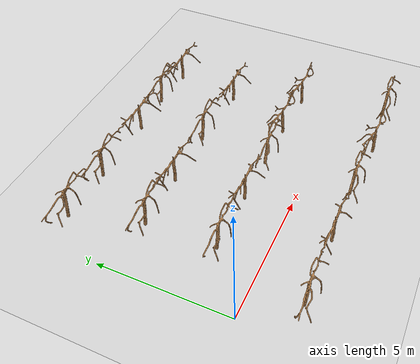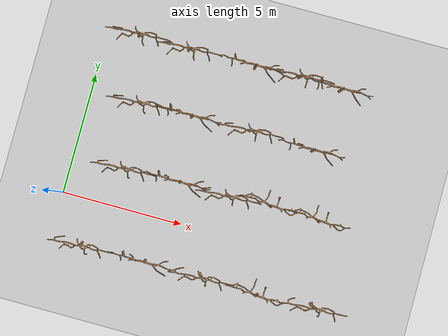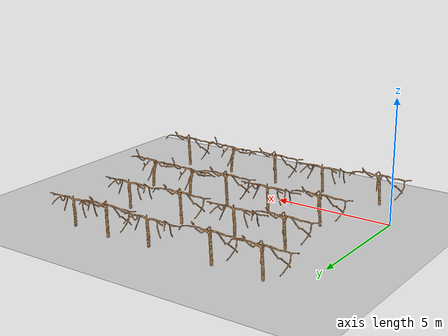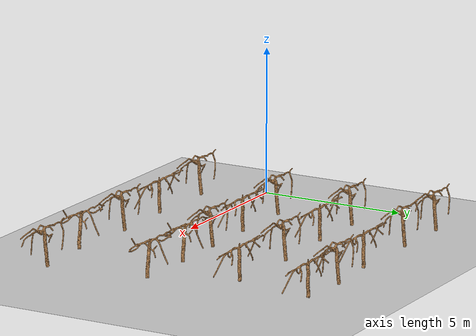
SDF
<sdf version="1.6">
 <world name="default">
  <light name="sun" type="directional">
   <pose>0 0 10 0 -0 0</pose>
   <diffuse>0.8 0.8 0.8 1</diffuse>
   <specular>0.1 0.1 0.1 1</specular>
   <attenuation>
    <range>1000</range>
    <constant>0.9</constant>
    <linear>0.01</linear>
    <quadratic>0.001</quadratic>
   </attenuation>
   <direction>-0.5 0.5 -1</direction>
  </light>
  <model name="ground_plane">
   <static>1</static>
   <link name="link">
    <collision name="collision">
     <geometry><plane><normal>0 0 1</normal><size>100 100</size></plane></geometry>
     <surface><friction><ode><mu>100</mu><mu2>50</mu2></ode></friction></surface>
    </collision>
    <visual name="visual">
     <cast_shadows>0</cast_shadows>
     <geometry><plane><normal>0 0 1</normal><size>100 100</size></plane></geometry>
     <material>
      <script><uri>file://media/materials/scripts/gazebo.material</uri><name>Gazebo/Grey</name></script>
     </material>
    </visual>
   </link>
  </model>
  <gravity>0 0 -9.8</gravity>
  <magnetic_field>6e-06 2.3e-05 -4.2e-05</magnetic_field>
  <atmosphere type="adiabatic"/>
  <physics name="default_physics" default="0" type="ode">
   <max_step_size>0.001</max_step_size>
   <real_time_factor>1</real_time_factor>
   <real_time_update_rate>1000</real_time_update_rate>
  </physics>
  <scene><ambient>0.4 0.4 0.4 1</ambient><background>0.7 0.7 0.7 1</background><shadows>1</shadows></scene>
  <spherical_coordinates>
   <surface_model>EARTH_WGS84</surface_model>
   <latitude_deg>0</latitude_deg>
   <longitude_deg>0</longitude_deg>
   <elevation>0</elevation>
   <heading_deg>0</heading_deg>
  </spherical_coordinates>
  <model name="vine">
   <static>1</static>
   <link name="link">
    <collision name="collision">
     <geometry>
      <mesh><uri>model://Vine1/meshes/mega_cloud3_processed.stl</uri><scale>1 1 1</scale></mesh>
     </geometry>
     <surface><friction><ode><mu>100</mu><mu2>50</mu2></ode></friction></surface>
    </collision>
    <visual name="visual">
     <geometry>
      <mesh><uri>model://Vine1/meshes/mega_cloud3_processed.stl</uri><scale>1 1 1</scale></mesh>
     </geometry>
     <material>
      <script><uri>file://media/materials/scripts/gazebo.material</uri><name>Gazebo/Wood</name></script>
     </material>
    </visual>
   </link>
   <pose>1.3484 -2.92599 0.698988 0 -0 1.59489</pose>
  </model>
  <model name="vine_clone">
   <static>1</static>
   <link name="link">
    <collision name="collision">
     <geometry>
      <mesh><uri>model://Vine1/meshes/mega_cloud3_processed.stl</uri><scale>1 1 1</scale></mesh>
     </geometry>
     <surface><friction><ode><mu>100</mu><mu2>50</mu2></ode></friction></surface>
    </collision>
    <visual name="visual">
     <geometry>
      <mesh><uri>model://Vine1/meshes/mega_cloud3_processed.stl</uri><scale>1 1 1</scale></mesh>
     </geometry>
     <material>
      <script><uri>file://media/materials/scripts/gazebo.material</uri><name>Gazebo/Wood</name></script>
     </material>
    </visual>
   </link>
   <pose>6.3166 -2.8904 0.698988 0 -0 1.59489</pose>
  </model>
  <model name="vine_0">
   <static>1</static>
   <link name="link">
    <collision name="collision">
     <geometry>
      <mesh><uri>model://Vine2/meshes/mega_cloud16_processed.stl</uri><scale>1 1 1</scale></mesh>
     </geometry>
     <surface><friction><ode><mu>100</mu><mu2>50</mu2></ode></friction></surface>
    </collision>
    <visual name="visual">
     <geometry>
      <mesh><uri>model://Vine2/meshes/mega_cloud16_processed.stl</uri><scale>1 1 1</scale></mesh>
     </geometry>
     <material>
      <script><uri>file://media/materials/scripts/gazebo.material</uri><name>Gazebo/Wood</name></script>
     </material>
    </visual>
   </link>
   <pose>3.8909 -2.84668 0.624561 0 -0 1.59365</pose>
  </model>
  <model name="vine_1">
   <static>1</static>
   <link name="link">
    <collision name="collision">
     <geometry>
      <mesh><uri>model://Vine3/meshes/mega_cloud7_processed.stl</uri><scale>1 1 1</scale></mesh>
     </geometry>
     <surface><friction><ode><mu>100</mu><mu2>50</mu2></ode></friction></surface>
    </collision>
    <visual name="visual">
     <geometry>
      <mesh><uri>model://Vine3/meshes/mega_cloud7_processed.stl</uri><scale>1 1 1</scale></mesh>
     </geometry>
     <material>
      <script><uri>file://media/materials/scripts/gazebo.material</uri><name>Gazebo/Wood</name></script>
     </material>
    </visual>
   </link>
   <pose>8.7558 -0.763701 0.729483 0 0 -1.58882</pose>
  </model>
  <model name="vine_clone_0">
   <static>1</static>
   <link name="link">
    <collision name="collision">
     <geometry>
      <mesh><uri>model://Vine1/meshes/mega_cloud3_processed.stl</uri><scale>1 1 1</scale></mesh>
     </geometry>
     <surface><friction><ode><mu>100</mu><mu2>50</mu2></ode></friction></surface>
    </collision>
    <visual name="visual">
     <geometry>
      <mesh><uri>model://Vine1/meshes/mega_cloud3_processed.stl</uri><scale>1 1 1</scale></mesh>
     </geometry>
     <material>
      <script><uri>file://media/materials/scripts/gazebo.material</uri><name>Gazebo/Wood</name></script>
     </material>
    </visual>
   </link>
   <pose>10.975 -2.8775 0.698988 0 -0 1.59489</pose>
  </model>
  <model name="vine_clone_1">
   <static>1</static>
   <link name="link">
    <collision name="collision">
     <geometry>
      <mesh><uri>model://Vine1/meshes/mega_cloud3_processed.stl</uri><scale>1 1 1</scale></mesh>
     </geometry>
     <surface><friction><ode><mu>100</mu><mu2>50</mu2></ode></friction></surface>
    </collision>
    <visual name="visual">
     <geometry>
      <mesh><uri>model://Vine1/meshes/mega_cloud3_processed.stl</uri><scale>1 1 1</scale></mesh>
     </geometry>
     <material>
      <script><uri>file://media/materials/scripts/gazebo.material</uri><name>Gazebo/Wood</name></script>
     </material>
    </visual>
   </link>
   <pose>6.51173 0.514512 0.698988 0 -0 1.59489</pose>
  </model>
  <model name="vine_clone_2">
   <static>1</static>
   <link name="link">
    <collision name="collision">
     <geometry>
      <mesh><uri>model://Vine1/meshes/mega_cloud3_processed.stl</uri><scale>1 1 1</scale></mesh>
     </geometry>
     <surface><friction><ode><mu>100</mu><mu2>50</mu2></ode></friction></surface>
    </collision>
    <visual name="visual">
     <geometry>
      <mesh><uri>model://Vine1/meshes/mega_cloud3_processed.stl</uri><scale>1 1 1</scale></mesh>
     </geometry>
     <material>
      <script><uri>file://media/materials/scripts/gazebo.material</uri><name>Gazebo/Wood</name></script>
     </material>
    </visual>
   </link>
   <pose>2.18816 0.485 0.698988 0 -0 1.59489</pose>
  </model>
  <model name="vine_0_clone">
   <static>1</static>
   <link name="link">
    <collision name="collision">
     <geometry>
      <mesh><uri>model://Vine2/meshes/mega_cloud16_processed.stl</uri><scale>1 1 1</scale></mesh>
     </geometry>
     <surface><friction><ode><mu>100</mu><mu2>50</mu2></ode></friction></surface>
    </collision>
    <visual name="visual">
     <geometry>
      <mesh><uri>model://Vine2/meshes/mega_cloud16_processed.stl</uri><scale>1 1 1</scale></mesh>
     </geometry>
     <material>
      <script><uri>file://media/materials/scripts/gazebo.material</uri><name>Gazebo/Wood</name></script>
     </material>
    </visual>
   </link>
   <pose>4.41717 0.600009 0.624561 0 -0 1.59365</pose>
  </model>
  <model name="vine_1_clone">
   <static>1</static>
   <link name="link">
    <collision name="collision">
     <geometry>
      <mesh><uri>model://Vine3/meshes/mega_cloud7_processed.stl</uri><scale>1 1 1</scale></mesh>
     </geometry>
     <surface><friction><ode><mu>100</mu><mu2>50</mu2></ode></friction></surface>
    </collision>
    <visual name="visual">
     <geometry>
      <mesh><uri>model://Vine3/meshes/mega_cloud7_processed.stl</uri><scale>1 1 1</scale></mesh>
     </geometry>
     <material>
      <script><uri>file://media/materials/scripts/gazebo.material</uri><name>Gazebo/Wood</name></script>
     </material>
    </visual>
   </link>
   <pose>8.36714 2.83743 0.729483 0 0 -1.58882</pose>
  </model>
  <model name="vine_1_clone_0">
   <static>1</static>
   <link name="link">
    <collision name="collision">
     <geometry>
      <mesh><uri>model://Vine3/meshes/mega_cloud7_processed.stl</uri><scale>1 1 1</scale></mesh>
     </geometry>
     <surface><friction><ode><mu>100</mu><mu2>50</mu2></ode></friction></surface>
    </collision>
    <visual name="visual">
     <geometry>
      <mesh><uri>model://Vine3/meshes/mega_cloud7_processed.stl</uri><scale>1 1 1</scale></mesh>
     </geometry>
     <material>
      <script><uri>file://media/materials/scripts/gazebo.material</uri><name>Gazebo/Wood</name></script>
     </material>
    </visual>
   </link>
   <pose>10.3975 2.76009 0.729483 0 0 -1.58882</pose>
  </model>
  <model name="vine_clone_clone">
   <static>1</static>
   <link name="link">
    <collision name="collision">
     <geometry>
      <mesh><uri>model://Vine1/meshes/mega_cloud3_processed.stl</uri><scale>1 1 1</scale></mesh>
     </geometry>
     <surface><friction><ode><mu>100</mu><mu2>50</mu2></ode></friction></surface>
    </collision>
    <visual name="visual">
     <geometry>
      <mesh><uri>model://Vine1/meshes/mega_cloud3_processed.stl</uri><scale>1 1 1</scale></mesh>
     </geometry>
     <material>
      <script><uri>file://media/materials/scripts/gazebo.material</uri><name>Gazebo/Wood</name></script>
     </material>
    </visual>
   </link>
   <pose>2.09486 3.18553 0.698988 0 -0 1.59489</pose>
  </model>
  <model name="vine_0_clone_clone">
   <static>1</static>
   <link name="link">
    <collision name="collision">
     <geometry>
      <mesh><uri>model://Vine2/meshes/mega_cloud16_processed.stl</uri><scale>1 1 1</scale></mesh>
     </geometry>
     <surface><friction><ode><mu>100</mu><mu2>50</mu2></ode></friction></surface>
    </collision>
    <visual name="visual">
     <geometry>
      <mesh><uri>model://Vine2/meshes/mega_cloud16_processed.stl</uri><scale>1 1 1</scale></mesh>
     </geometry>
     <material>
      <script><uri>file://media/materials/scripts/gazebo.material</uri><name>Gazebo/Wood</name></script>
     </material>
    </visual>
   </link>
   <pose>4.16334 3.29674 0.624561 0 -0 1.59365</pose>
  </model>
  <model name="vine_0_clone_clone_0">
   <static>1</static>
   <link name="link">
    <collision name="collision">
     <geometry>
      <mesh><uri>model://Vine2/meshes/mega_cloud16_processed.stl</uri><scale>1 1 1</scale></mesh>
     </geometry>
     <surface><friction><ode><mu>100</mu><mu2>50</mu2></ode></friction></surface>
    </collision>
    <visual name="visual">
     <geometry>
      <mesh><uri>model://Vine2/meshes/mega_cloud16_processed.stl</uri><scale>1 1 1</scale></mesh>
     </geometry>
     <material>
      <script><uri>file://media/materials/scripts/gazebo.material</uri><name>Gazebo/Wood</name></script>
     </material>
    </visual>
   </link>
   <pose>9.27583 3.25631 0.624561 0 -0 1.59365</pose>
  </model>
  <model name="vine_clone_0_clone">
   <static>1</static>
   <link name="link">
    <collision name="collision">
     <geometry>
      <mesh><uri>model://Vine1/meshes/mega_cloud3_processed.stl</uri><scale>1 1 1</scale></mesh>
     </geometry>
     <surface><friction><ode><mu>100</mu><mu2>50</mu2></ode></friction></surface>
    </collision>
    <visual name="visual">
     <geometry>
      <mesh><uri>model://Vine1/meshes/mega_cloud3_processed.stl</uri><scale>1 1 1</scale></mesh>
     </geometry>
     <material>
      <script><uri>file://media/materials/scripts/gazebo.material</uri><name>Gazebo/Wood</name></script>
     </material>
    </visual>
   </link>
   <pose>6.70884 3.28732 0.698988 0 -0 1.59489</pose>
  </model>
  <model name="vine_clone_0_clone_0">
   <static>1</static>
   <link name="link">
    <collision name="collision">
     <geometry>
      <mesh><uri>model://Vine1/meshes/mega_cloud3_processed.stl</uri><scale>1 1 1</scale></mesh>
     </geometry>
     <surface><friction><ode><mu>100</mu><mu2>50</mu2></ode></friction></surface>
    </collision>
    <visual name="visual">
     <geometry>
      <mesh><uri>model://Vine1/meshes/mega_cloud3_processed.stl</uri><scale>1 1 1</scale></mesh>
     </geometry>
     <material>
      <script><uri>file://media/materials/scripts/gazebo.material</uri><name>Gazebo/Wood</name></script>
     </material>
    </visual>
   </link>
   <pose>1.31315 5.84896 0.698988 0 -0 1.59489</pose>
  </model>
  <model name="vine_clone_0_clone_clone">
   <static>1</static>
   <link name="link">
    <collision name="collision">
     <geometry>
      <mesh><uri>model://Vine1/meshes/mega_cloud3_processed.stl</uri><scale>1 1 1</scale></mesh>
     </geometry>
     <surface><friction><ode><mu>100</mu><mu2>50</mu2></ode></friction></surface>
    </collision>
    <visual name="visual">
     <geometry>
      <mesh><uri>model://Vine1/meshes/mega_cloud3_processed.stl</uri><scale>1 1 1</scale></mesh>
     </geometry>
     <material>
      <script><uri>file://media/materials/scripts/gazebo.material</uri><name>Gazebo/Wood</name></script>
     </material>
    </visual>
   </link>
   <pose>3.45116 5.81552 0.698988 0 -0 1.59489</pose>
  </model>
  <model name="vine_0_clone_clone_0_clone">
   <static>1</static>
   <link name="link">
    <collision name="collision">
     <geometry>
      <mesh><uri>model://Vine2/meshes/mega_cloud16_processed.stl</uri><scale>1 1 1</scale></mesh>
     </geometry>
     <surface><friction><ode><mu>100</mu><mu2>50</mu2></ode></friction></surface>
    </collision>
    <visual name="visual">
     <geometry>
      <mesh><uri>model://Vine2/meshes/mega_cloud16_processed.stl</uri><scale>1 1 1</scale></mesh>
     </geometry>
     <material>
      <script><uri>file://media/materials/scripts/gazebo.material</uri><name>Gazebo/Wood</name></script>
     </material>
    </visual>
   </link>
   <pose>6.12355 5.91603 0.624561 0 -0 1.59365</pose>
  </model>
  <model name="vine_clone_0_clone_clone_0">
   <static>1</static>
   <link name="link">
    <collision name="collision">
     <geometry>
      <mesh><uri>model://Vine1/meshes/mega_cloud3_processed.stl</uri><scale>1 1 1</scale></mesh>
     </geometry>
     <surface><friction><ode><mu>100</mu><mu2>50</mu2></ode></friction></surface>
    </collision>
    <visual name="visual">
     <geometry>
      <mesh><uri>model://Vine1/meshes/mega_cloud3_processed.stl</uri><scale>1 1 1</scale></mesh>
     </geometry>
     <material>
      <script><uri>file://media/materials/scripts/gazebo.material</uri><name>Gazebo/Wood</name></script>
     </material>
    </visual>
   </link>
   <pose>8.10309 5.9333 0.698988 0 -0 1.59489</pose>
  </model>
  <model name="vine_0_clone_clone_clone">
   <static>1</static>
   <link name="link">
    <collision name="collision">
     <geometry>
      <mesh><uri>model://Vine2/meshes/mega_cloud16_processed.stl</uri><scale>1 1 1</scale></mesh>
     </geometry>
     <surface><friction><ode><mu>100</mu><mu2>50</mu2></ode></friction></surface>
    </collision>
    <visual name="visual">
     <geometry>
      <mesh><uri>model://Vine2/meshes/mega_cloud16_processed.stl</uri><scale>1 1 1</scale></mesh>
     </geometry>
     <material>
      <script><uri>file://media/materials/scripts/gazebo.material</uri><name>Gazebo/Wood</name></script>
     </material>
    </visual>
   </link>
   <pose>9.7294 5.92093 0.624561 0 -0 1.59365</pose>
  </model>
 </world>
</sdf>
